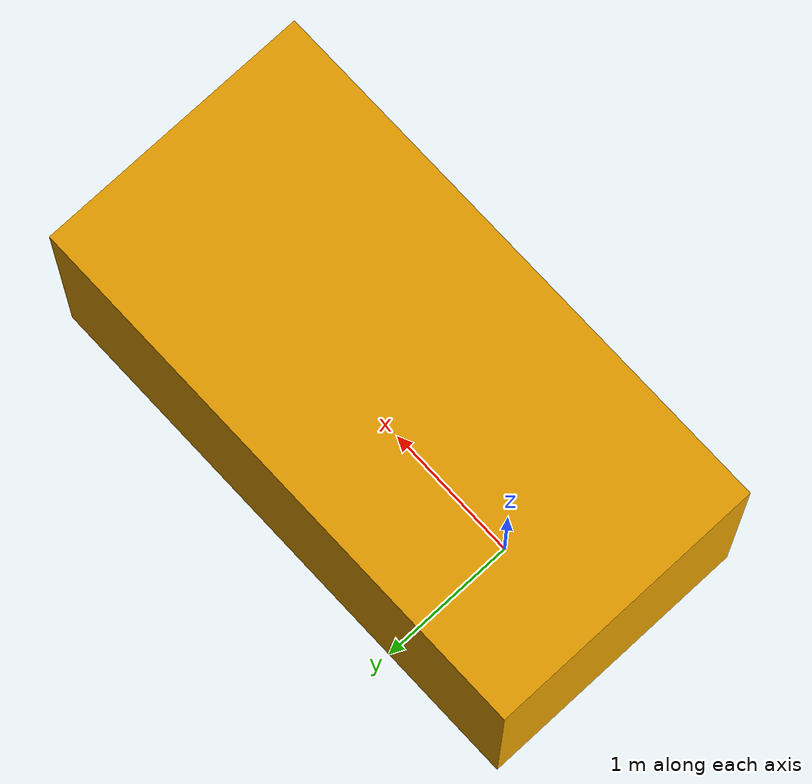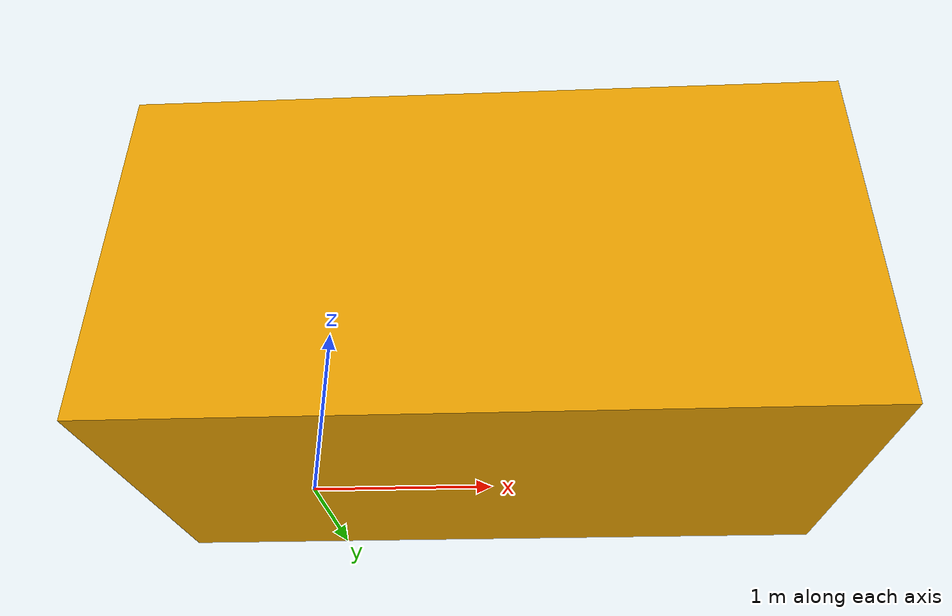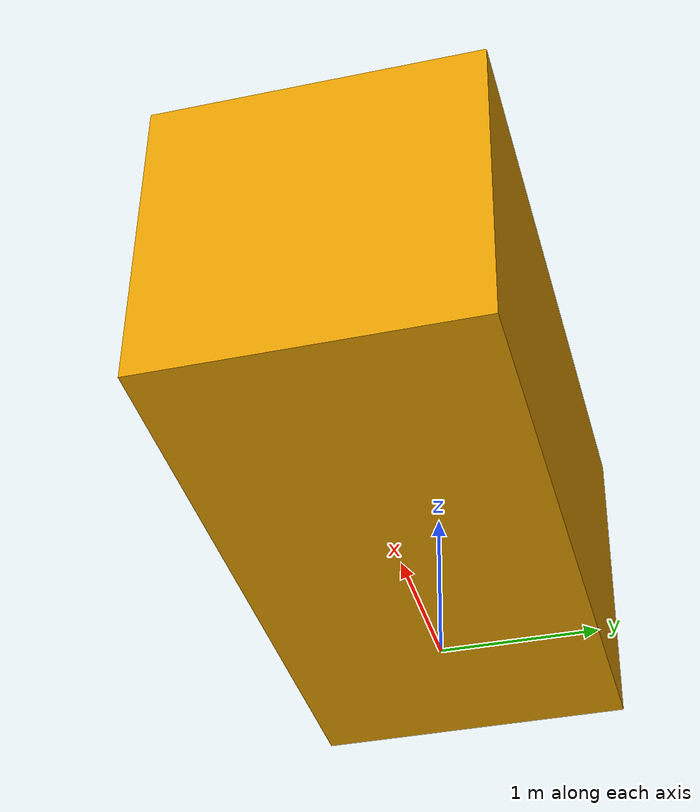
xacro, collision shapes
<?xml version="1.0"?>
<robot name="car" xmlns:xacro="http://www.ros.org/wiki/xacro">

  <!-- make a car -->
  <xacro:include filename="$(find car_urdf)/urdf/landrover90.urdf.xacro" />
  <xacro:landrover90 prefix="robot1_" />

  <!-- make it mobile -->
  <xacro:include filename="$(find car_urdf)/urdf/move_base.urdf.xacro" />
  <xacro:move_base prefix="robot1_" />

  <!-- fix the car to the mobile base -->
  <joint name="robot1_mobile_to_car" type="fixed">
    <parent link="robot1_mobile" />
    <child link = "robot1_car" />
  </joint>

  <!-- make a car -->
  <xacro:include filename="$(find car_urdf)/urdf/landrover90.urdf.xacro" />
  <xacro:landrover90 prefix="robot2_" />

  <!-- make it mobile -->
  <xacro:include filename="$(find car_urdf)/urdf/move_base.urdf.xacro" />
  <xacro:move_base prefix="robot2_" />

  <!-- fix the car to the mobile base -->
  <joint name="robot2_mobile_to_car" type="fixed">
    <parent link="robot2_mobile" />
    <child link = "robot2_car" />
  </joint>

  <!-- make a car -->
  <xacro:include filename="$(find car_urdf)/urdf/landrover90.urdf.xacro" />
  <xacro:landrover90 prefix="robot3_" />

  <!-- make it mobile -->
  <xacro:include filename="$(find car_urdf)/urdf/move_base.urdf.xacro" />
  <xacro:move_base prefix="robot3_" />

  <!-- fix the car to the mobile base -->
  <joint name="robot3_mobile_to_car" type="fixed">
    <parent link="robot3_mobile" />
    <child link = "robot3_car" />
  </joint>

  <!-- and fix the mobile base origin to "base_link" to keep RVIZ happy-->
  <link name="base_link" />
  <joint name="robot1_base_to_world" type="fixed">
    <parent link="base_link" />
    <child link = "robot1_world" />
  </joint>
  <joint name="robot2_base_to_world" type="fixed">
    <parent link="base_link" />
    <child link = "robot2_world" />
  </joint>
  <joint name="robot3_base_to_world" type="fixed">
    <parent link="base_link" />
    <child link = "robot3_world" />
  </joint>

</robot>

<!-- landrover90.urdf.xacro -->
<robot xmlns:xacro="http://www.ros.org/wiki/xacro">

  <xacro:macro name="landrover90" params="prefix">

  <link name="${prefix}car">
    <visual>
      <geometry>
        <mesh filename="package://car_urdf/meshes/lr90.dae" scale="2 2 2" />
      </geometry>
      <origin rpy="0 0 0" xyz="1.2 0 1.5" />
    </visual>
    <collision>
      <geometry>
        <box size="4 2 2"/>
      </geometry>
      <origin rpy="0 0 0" xyz="1 0 1" />
    </collision>
  </link>

  </xacro:macro>

</robot>

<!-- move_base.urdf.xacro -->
<robot xmlns:xacro="http://www.ros.org/wiki/xacro">

  <xacro:macro name="move_base" params="prefix">

    <link name="${prefix}world" />

    <link name="${prefix}x" />

    <link name="${prefix}xy" />

    <link name="${prefix}mobile" />

    <joint name="${prefix}move_x" type="prismatic" >
      <parent link="${prefix}world" />
      <child link="${prefix}x" />
      <axis xyz="1 0 0" />
      <limit lower="-100" upper="100" effort="100" velocity="100" />
    </joint>

    <joint name="${prefix}move_y" type="prismatic" >
      <parent link="${prefix}x" />
      <child link="${prefix}xy" />
      <axis xyz="0 1 0" />
      <limit lower="-100" upper="100" effort="100" velocity="100" />
    </joint>

    <joint name="${prefix}turn_z" type="revolute" >
      <parent link="${prefix}xy" />
      <child link="${prefix}mobile" />
      <axis xyz="0 0 1" />
      <limit lower="-3.141" upper="3.141" effort="100" velocity="100" />
    </joint>

  </xacro:macro>

</robot>
